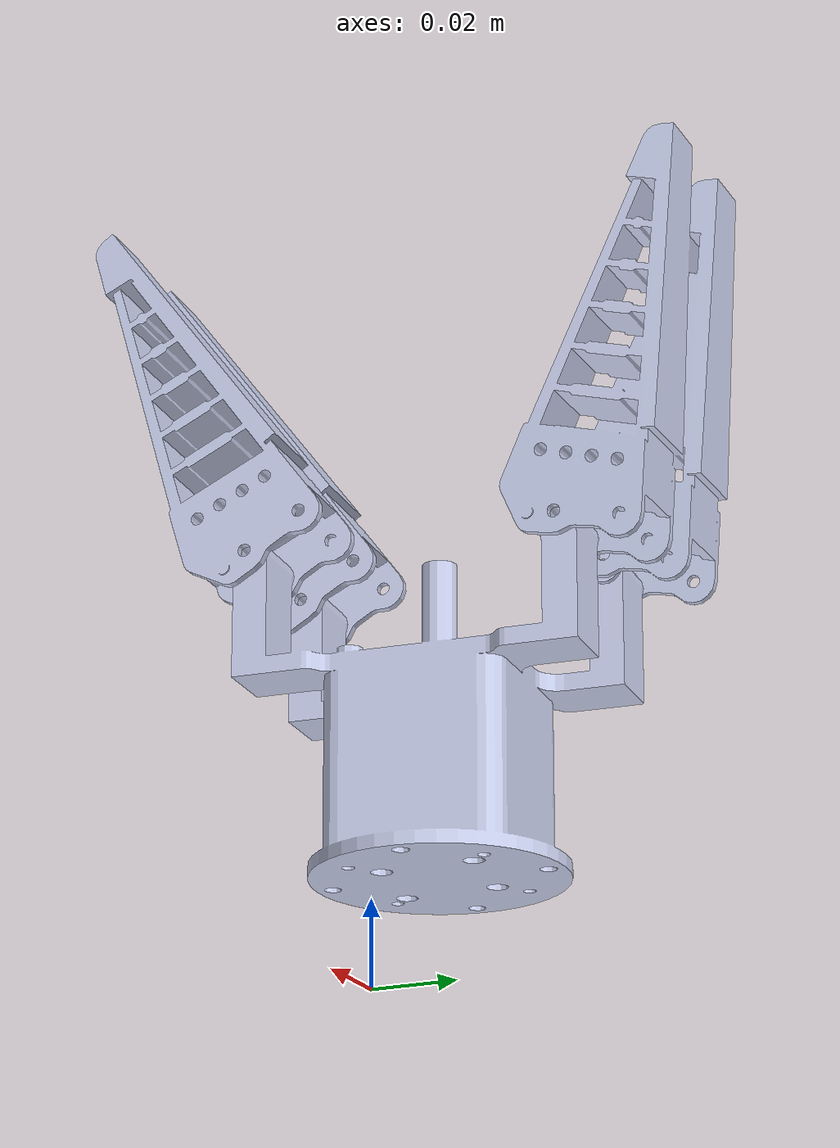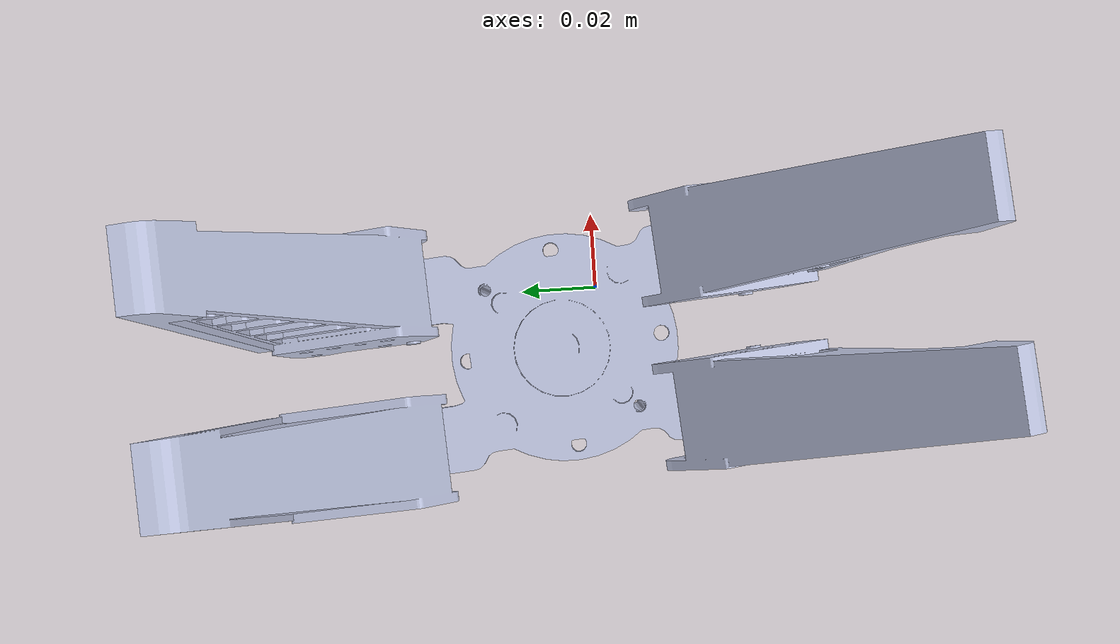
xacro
<robot name= "wheeltec_gripper" xmlns:xacro="http://www.ros.org/wiki/xacro">

 <link name="wheeltec_gripper_base_link"/>

  <joint name="wheeltec_gripper_base_link_joint" type="fixed">
        <parent link="wheeltec_gripper_base_link"/>
        <child link="wheeltec_gripper_chaise"/>
        <origin xyz="-0.005 0 0.0272" rpy="0 ${-pi/2} 0"/>
    </joint>
 <link name="wheeltec_gripper_chaise">
    <inertial>
      <origin
        xyz="0.0293534223009873 0.0090853921588317 0.0106597454256406"
        rpy="0 0 0" />
      <mass
        value="0.102600550272344" />
      <inertia
        ixx="5.20788240164367E-05"
        ixy="6.54090863453443E-09"
        ixz="4.42197949237897E-10"
        iyy="3.20696114264544E-05"
        iyz="-1.34739886846522E-06"
        izz="4.78657905498745E-05" />
    </inertial>
    <visual>
      <origin
        xyz="0 0 0"
        rpy="0 0 0" />
      <geometry>
        <mesh
          filename="package://wheeltec_gripper_description/meshes/gripperbase.STL" />
      </geometry>
      <material
        name="">
        <color
          rgba="0.792156862745098 0.819607843137255 0.933333333333333 1" />
      </material>
    </visual>
    <collision>
          <origin
        xyz="0.0293534223009873 0.0090853921588317 0.0106597454256406"
        rpy="0 0 0" />
            <geometry>
                <box size="0.05 0.08 0.045"/>
            </geometry>
    </collision>
 </link>
  <gazebo reference="wheeltec_gripper_chaise">
    <material>Gazebo/Yellow</material>
  </gazebo>
  <!-- right_finger finger -->
  <joint name="left_finger_joint" type="revolute">
    <origin xyz="0.071508 -0.024545 -0.020131"
      rpy="0 0 0" />
    <parent link="wheeltec_gripper_chaise"/>
    <child link="left_finger"/>
    <axis  xyz="2.5729E-05 -0.080001 0.99679"/>
    <limit  lower="0" upper="0.7298" effort="10"  velocity="1.0" />
    <dynamics damping="1" friction="1"/>
  </joint>
   <link
    name="left_finger">
    <inertial>
      <origin
        xyz="0.0324201926836488 -0.0145963763975525 0.0293610241174507"
        rpy="0 0 0" />
      <mass
        value="0.0454654477917792" />
      <inertia
        ixx="8.54538343821676E-06"
        ixy="9.08652805486317E-06"
        ixz="7.29792995722946E-07"
        iyy="2.33471912608672E-05"
        iyz="-4.42703368456901E-07"
        izz="2.88247074076199E-05" />
    </inertial>
    <visual>
      <origin
        xyz="0 0 0"
        rpy="0 0 0" />
      <geometry>
        <mesh
          filename="package://wheeltec_gripper_description/meshes/fingers.STL" />
      </geometry>
      <material
        name="">
        <color
          rgba="0.792156862745098 0.819607843137255 0.933333333333333 1" />
      </material>
    </visual>
    <collision>
          <origin
        xyz="0.0324201926836488 -0.0145963763975525 0.0293610241174507"
        rpy="0 0 -0.6" />
            <geometry>
                <box size="0.1 0.02 0.04"/>
            </geometry>
      </collision>
  </link>
  <link
     name="wheeltec_gripper_center">
  </link>
  <joint name="wheeltec_gripper_center_joint" type="fixed">
    <origin xyz="0.125 0 0"
      rpy="0 0 0" />
    <parent link="wheeltec_gripper_chaise"/>
    <child link="wheeltec_gripper_center"/>
    <axis  xyz="0.125 0 0"/>
  </joint>

  <gazebo reference="left_finger">
    <material>Gazebo/Green</material>
  </gazebo>
  <xacro:macro name="transmission_macro" params="joint_name hardware_interface">
  <transmission name="trans_'${joint_name}'">
    <type>transmission_interface/SimpleTransmission</type>
    <joint name="left_finger_joint">
      <hardwareInterface>hardware_interface/${hardware_interface}</hardwareInterface>
    </joint>
    <actuator name="motor_left_finger_joint">
      <mechanicalReduction>1</mechanicalReduction>
      <hardwareInterface>hardware_interface/${hardware_interface}</hardwareInterface>
    </actuator>
  </transmission>
  </xacro:macro>
  <xacro:transmission_macro  joint_name="left_finger_joint" hardware_interface="PositionJointInterface"/>

  <!-- left_finger finger -->
  <joint name="right_finger_joint" type="revolute">
    <origin xyz="0.071485 0.047224 -0.01437"
      rpy="0 0 0.7298" />
    <parent link="wheeltec_gripper_chaise"/>
    <child link="right_finger"/>
    <axis xyz="-2.5729E-05 0.080001 -0.99679"/>
    <limit lower="0" upper="0.7298" effort="10"  velocity="1.0" />
    <mimic joint="left_finger_joint" multiplier="1" offset="0"/>
    <dynamics damping="1" friction="1"/>
  </joint>
   <link
    name="right_finger">
    <inertial>
      <origin
        xyz="0.0338378772194818 0.00534175148012631 0.0260745753522557"
        rpy="0 0 0" />
      <mass
        value="0.0454654472444149" />
      <inertia
        ixx="6.25574496069598E-06"
        ixy="-6.61546951322458E-06"
        ixz="-5.30362302163462E-07"
        iyy="2.5622104774585E-05"
        iyz="-2.59716886842376E-07"
        izz="2.88394198458503E-05" />
    </inertial>
    <visual>
      <origin
        xyz="0 0 0"
        rpy="0 0 0" />
      <geometry>
        <mesh
          filename="package://wheeltec_gripper_description/meshes/fingers.STL" />
      </geometry>
      <material
        name="">
        <color
          rgba="0.792156862745098 0.819607843137255 0.933333333333333 1" />
      </material>
    </visual>
    <collision>
          <origin
        xyz="0.0338378772194818 -0.02034175148012631 0.020745753522557"
        rpy="0 0 -0.3" />
            <geometry>
                <box size="0.1 0.02 0.04"/>
            </geometry>
      </collision>
  </link>
  <gazebo reference="right_finger">
    <material>Gazebo/Red</material>
  </gazebo>
  <xacro:macro name="mimic_joint_plugin_gazebo" params="parent_joint mimic_joint has_pid:=false multiplier:=-1.0 offset:=0 sensitiveness:=0.0 max_effort:=200 robot_namespace:='/'">
            <gazebo>
                <plugin name="${mimic_joint}_mimic_joint_plugin" filename="libroboticsgroup_upatras_gazebo_mimic_joint_plugin.so">
                    <joint>${parent_joint}</joint>
                    <mimicJoint>${mimic_joint}</mimicJoint>
                    <xacro:if value="${has_pid}">
                        <hasPID />
                    </xacro:if>
                    <multiplier>${multiplier}</multiplier>
                    <offset>${offset}</offset>
                    <sensitiveness>${sensitiveness}</sensitiveness>
                    <maxEffort>${max_effort}</maxEffort>
                    <xacro:unless value="${robot_namespace == '/'}">
                        <robotNamespace>($robot_namespace)</robotNamespace>
                    </xacro:unless>
                </plugin>
            </gazebo>
        </xacro:macro>

 <xacro:mimic_joint_plugin_gazebo  parent_joint="left_finger_joint" mimic_joint="right_finger_joint" has_pid="false" multiplier="1.0" max_effort="10"/>
       <gazebo>
            <plugin name="gazebo_grasp_fix" filename="libgazebo_grasp_fix.so">
                <arm>
                    <arm_name>ar3</arm_name>
                    <palm_link>wheeltec_gripper_chaise</palm_link>
                    <gripper_link> left_finger </gripper_link>
                    <gripper_link> right_finger </gripper_link>
                </arm>
                <disable_collisions_on_attach>false</disable_collisions_on_attach>
                <forces_angle_tolerance>45</forces_angle_tolerance>
                <update_rate>5</update_rate>
                <grip_count_threshold>2</grip_count_threshold>
                <max_grip_count>10</max_grip_count>
                <release_tolerance>10</release_tolerance>
                <contact_topic>__default_topic__</contact_topic>
            </plugin>
        </gazebo>

</robot>
